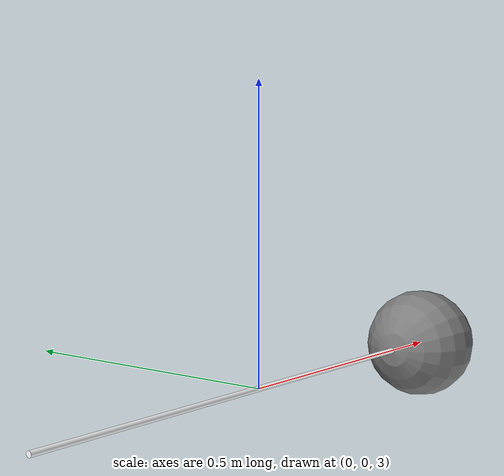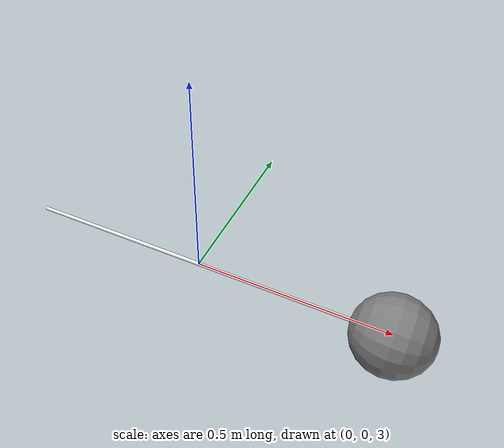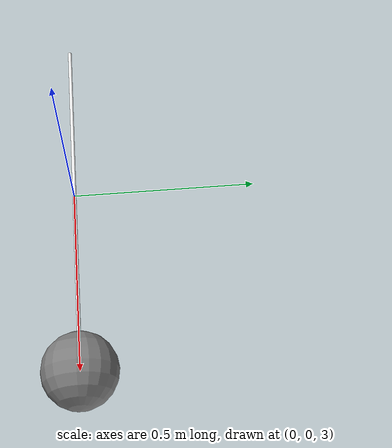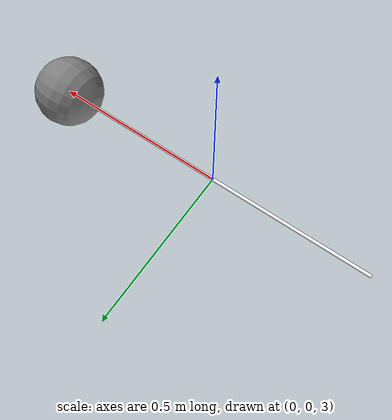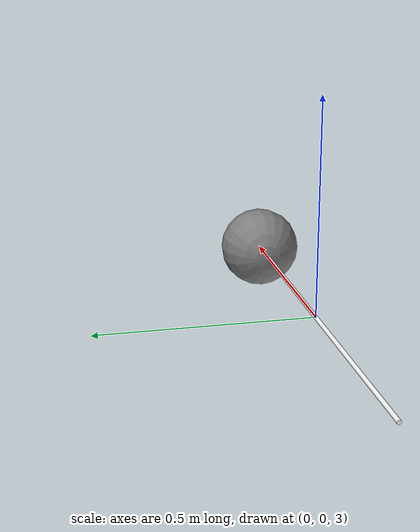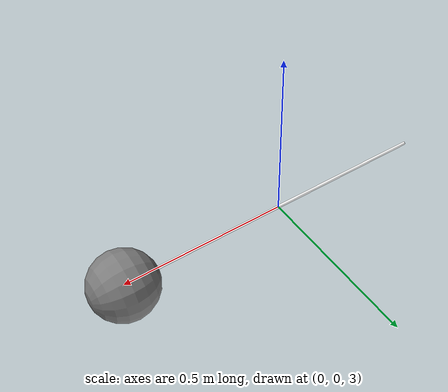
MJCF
<mujoco>
	<option gravity="0 0 -9.81">
		<flag sensornoise="enable" />
	</option>
	<worldbody>
        <light diffuse=".5 .5 .5" pos="0 0 3" dir="0 0 -1"/>
		<geom type="plane" size="2 2 0.1" rgba=".9 0 0 1"/>
		<body pos="0 0 3" euler="0 270 0">
			<joint name="pin" type="hinge" axis = "0 -1 0" pos="0 0 0.5"/>
			<geom type="cylinder" size="0.005 0.5" rgba="1 1 1 1" mass="0"/>
			<body pos="0 0 -0.5">
				<geom type="sphere" size="0.1" mass="10"/>
			</body>
		</body>
	</worldbody>
	<actuator>
		<motor joint="pin" name="servo" gear="0.9" ctrllimited="true" ctrlrange="-360 360" />
		<position name="position_servo" joint="pin" kp="10" />
		<velocity name="velocity_servo" joint="pin" kv="0" />
	</actuator>
	<sensor>
		<jointpos joint="pin" noise="0.2"/>
		<jointvel joint="pin" noise="1" />
	</sensor>
</mujoco>
